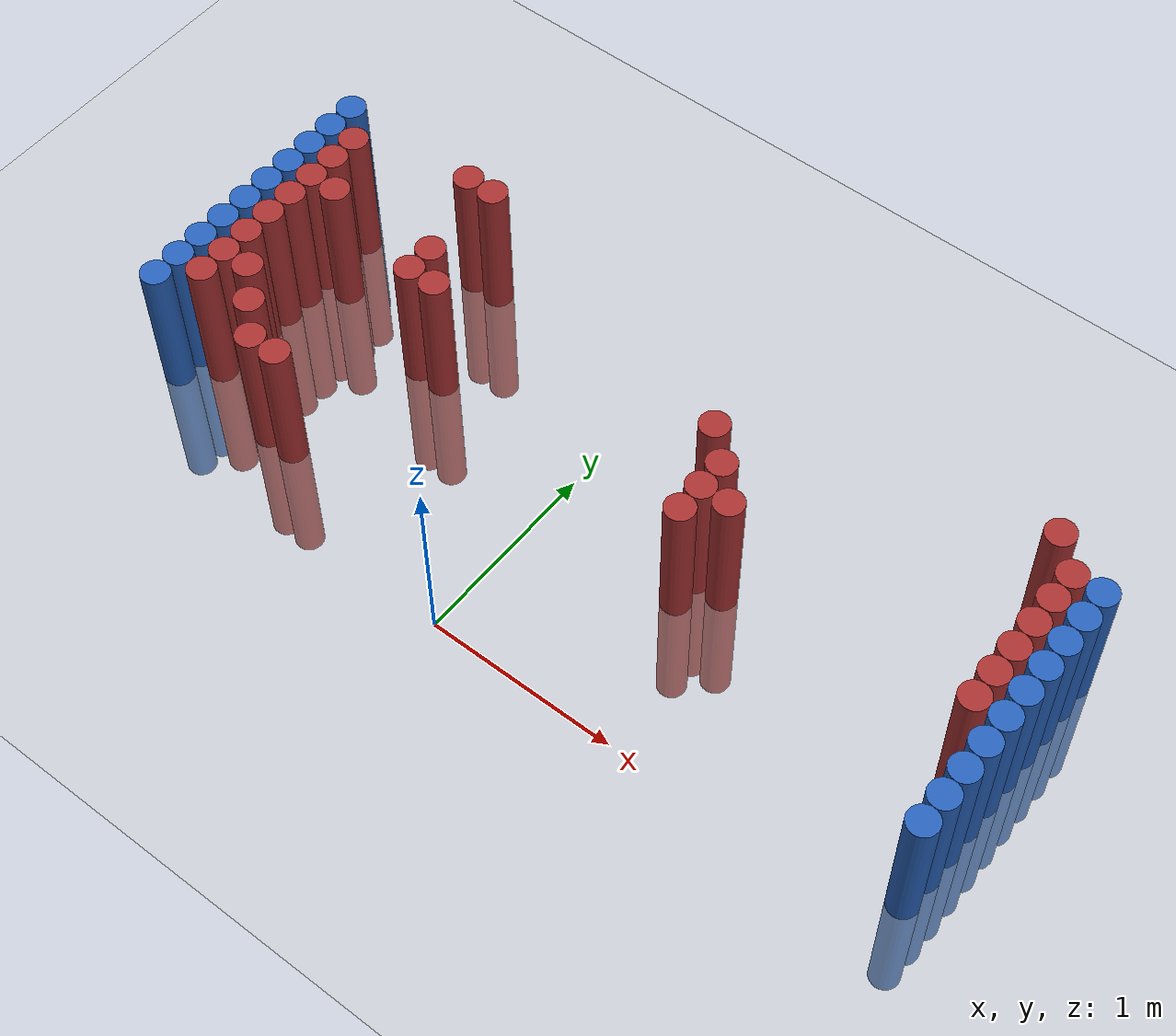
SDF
<sdf version="1.6">
 <world name="default">
  <model name="ground_plane">
   <static>1</static>
   <link name="link">
    <collision name="collision">
     <geometry><plane><normal>0 0 1</normal><size>100 100</size></plane></geometry>
     <surface><friction><ode><mu>100</mu><mu2>50</mu2></ode></friction></surface>
    </collision>
    <visual name="visual">
     <cast_shadows>0</cast_shadows>
     <geometry><plane><normal>0 0 1</normal><size>100 100</size></plane></geometry>
     <material>
      <script><uri>file://media/materials/scripts/gazebo.material</uri><name>Gazebo/Grey</name></script>
     </material>
    </visual>
   </link>
  </model>
  <model name="unit_cylinder_97">
   <static>1</static>
   <pose>-1.925000 0.325000 0.000000 0.000000 0.000000 0.000000</pose>
   <link name="link">
    <inertial>
     <mass>1</mass>
     <inertia><ixx>0.145833</ixx><ixy>0</ixy><ixz>0</ixz><iyy>0.145833</iyy><iyz>0</iyz><izz>0.125</izz></inertia>
    </inertial>
    <collision name="collision">
     <geometry><cylinder><radius>0.075000</radius><length>1.5</length></cylinder></geometry>
    </collision>
    <visual name="visual">
     <geometry><cylinder><radius>0.075000</radius><length>1.5</length></cylinder></geometry>
     <material>
      <ambient>0.152000 0.379000 0.720000 1</ambient>
      <diffuse>0.152000 0.379000 0.720000 1</diffuse>
     </material>
     <material>
      <script><name>Gazebo/Grey</name><uri>file://media/materials/scripts/gazebo.material</uri></script>
     </material>
    </visual>
   </link>
  </model>
  <model name="unit_cylinder_98">
   <static>1</static>
   <pose>-1.925000 0.475000 0.000000 0.000000 0.000000 0.000000</pose>
   <link name="link">
    <inertial>
     <mass>1</mass>
     <inertia><ixx>0.145833</ixx><ixy>0</ixy><ixz>0</ixz><iyy>0.145833</iyy><iyz>0</iyz><izz>0.125</izz></inertia>
    </inertial>
    <collision name="collision">
     <geometry><cylinder><radius>0.075000</radius><length>1.5</length></cylinder></geometry>
    </collision>
    <visual name="visual">
     <geometry><cylinder><radius>0.075000</radius><length>1.5</length></cylinder></geometry>
     <material>
      <ambient>0.152000 0.379000 0.720000 1</ambient>
      <diffuse>0.152000 0.379000 0.720000 1</diffuse>
     </material>
     <material>
      <script><name>Gazebo/Grey</name><uri>file://media/materials/scripts/gazebo.material</uri></script>
     </material>
    </visual>
   </link>
  </model>
  <model name="unit_cylinder_99">
   <static>1</static>
   <pose>-1.925000 0.625000 0.000000 0.000000 0.000000 0.000000</pose>
   <link name="link">
    <inertial>
     <mass>1</mass>
     <inertia><ixx>0.145833</ixx><ixy>0</ixy><ixz>0</ixz><iyy>0.145833</iyy><iyz>0</iyz><izz>0.125</izz></inertia>
    </inertial>
    <collision name="collision">
     <geometry><cylinder><radius>0.075000</radius><length>1.5</length></cylinder></geometry>
    </collision>
    <visual name="visual">
     <geometry><cylinder><radius>0.075000</radius><length>1.5</length></cylinder></geometry>
     <material>
      <ambient>0.152000 0.379000 0.720000 1</ambient>
      <diffuse>0.152000 0.379000 0.720000 1</diffuse>
     </material>
     <material>
      <script><name>Gazebo/Grey</name><uri>file://media/materials/scripts/gazebo.material</uri></script>
     </material>
    </visual>
   </link>
  </model>
  <model name="unit_cylinder_100">
   <static>1</static>
   <pose>-1.925000 0.775000 0.000000 0.000000 0.000000 0.000000</pose>
   <link name="link">
    <inertial>
     <mass>1</mass>
     <inertia><ixx>0.145833</ixx><ixy>0</ixy><ixz>0</ixz><iyy>0.145833</iyy><iyz>0</iyz><izz>0.125</izz></inertia>
    </inertial>
    <collision name="collision">
     <geometry><cylinder><radius>0.075000</radius><length>1.5</length></cylinder></geometry>
    </collision>
    <visual name="visual">
     <geometry><cylinder><radius>0.075000</radius><length>1.5</length></cylinder></geometry>
     <material>
      <ambient>0.152000 0.379000 0.720000 1</ambient>
      <diffuse>0.152000 0.379000 0.720000 1</diffuse>
     </material>
     <material>
      <script><name>Gazebo/Grey</name><uri>file://media/materials/scripts/gazebo.material</uri></script>
     </material>
    </visual>
   </link>
  </model>
  <model name="unit_cylinder_101">
   <static>1</static>
   <pose>-1.925000 0.925000 0.000000 0.000000 0.000000 0.000000</pose>
   <link name="link">
    <inertial>
     <mass>1</mass>
     <inertia><ixx>0.145833</ixx><ixy>0</ixy><ixz>0</ixz><iyy>0.145833</iyy><iyz>0</iyz><izz>0.125</izz></inertia>
    </inertial>
    <collision name="collision">
     <geometry><cylinder><radius>0.075000</radius><length>1.5</length></cylinder></geometry>
    </collision>
    <visual name="visual">
     <geometry><cylinder><radius>0.075000</radius><length>1.5</length></cylinder></geometry>
     <material>
      <ambient>0.152000 0.379000 0.720000 1</ambient>
      <diffuse>0.152000 0.379000 0.720000 1</diffuse>
     </material>
     <material>
      <script><name>Gazebo/Grey</name><uri>file://media/materials/scripts/gazebo.material</uri></script>
     </material>
    </visual>
   </link>
  </model>
  <model name="unit_cylinder_102">
   <static>1</static>
   <pose>-1.925000 1.075000 0.000000 0.000000 0.000000 0.000000</pose>
   <link name="link">
    <inertial>
     <mass>1</mass>
     <inertia><ixx>0.145833</ixx><ixy>0</ixy><ixz>0</ixz><iyy>0.145833</iyy><iyz>0</iyz><izz>0.125</izz></inertia>
    </inertial>
    <collision name="collision">
     <geometry><cylinder><radius>0.075000</radius><length>1.5</length></cylinder></geometry>
    </collision>
    <visual name="visual">
     <geometry><cylinder><radius>0.075000</radius><length>1.5</length></cylinder></geometry>
     <material>
      <ambient>0.152000 0.379000 0.720000 1</ambient>
      <diffuse>0.152000 0.379000 0.720000 1</diffuse>
     </material>
     <material>
      <script><name>Gazebo/Grey</name><uri>file://media/materials/scripts/gazebo.material</uri></script>
     </material>
    </visual>
   </link>
  </model>
  <model name="unit_cylinder_103">
   <static>1</static>
   <pose>-1.925000 1.225000 0.000000 0.000000 0.000000 0.000000</pose>
   <link name="link">
    <inertial>
     <mass>1</mass>
     <inertia><ixx>0.145833</ixx><ixy>0</ixy><ixz>0</ixz><iyy>0.145833</iyy><iyz>0</iyz><izz>0.125</izz></inertia>
    </inertial>
    <collision name="collision">
     <geometry><cylinder><radius>0.075000</radius><length>1.5</length></cylinder></geometry>
    </collision>
    <visual name="visual">
     <geometry><cylinder><radius>0.075000</radius><length>1.5</length></cylinder></geometry>
     <material>
      <ambient>0.152000 0.379000 0.720000 1</ambient>
      <diffuse>0.152000 0.379000 0.720000 1</diffuse>
     </material>
     <material>
      <script><name>Gazebo/Grey</name><uri>file://media/materials/scripts/gazebo.material</uri></script>
     </material>
    </visual>
   </link>
  </model>
  <model name="unit_cylinder_104">
   <static>1</static>
   <pose>-1.925000 1.375000 0.000000 0.000000 0.000000 0.000000</pose>
   <link name="link">
    <inertial>
     <mass>1</mass>
     <inertia><ixx>0.145833</ixx><ixy>0</ixy><ixz>0</ixz><iyy>0.145833</iyy><iyz>0</iyz><izz>0.125</izz></inertia>
    </inertial>
    <collision name="collision">
     <geometry><cylinder><radius>0.075000</radius><length>1.5</length></cylinder></geometry>
    </collision>
    <visual name="visual">
     <geometry><cylinder><radius>0.075000</radius><length>1.5</length></cylinder></geometry>
     <material>
      <ambient>0.152000 0.379000 0.720000 1</ambient>
      <diffuse>0.152000 0.379000 0.720000 1</diffuse>
     </material>
     <material>
      <script><name>Gazebo/Grey</name><uri>file://media/materials/scripts/gazebo.material</uri></script>
     </material>
    </visual>
   </link>
  </model>
  <model name="unit_cylinder_105">
   <static>1</static>
   <pose>-1.925000 1.525000 0.000000 0.000000 0.000000 0.000000</pose>
   <link name="link">
    <inertial>
     <mass>1</mass>
     <inertia><ixx>0.145833</ixx><ixy>0</ixy><ixz>0</ixz><iyy>0.145833</iyy><iyz>0</iyz><izz>0.125</izz></inertia>
    </inertial>
    <collision name="collision">
     <geometry><cylinder><radius>0.075000</radius><length>1.5</length></cylinder></geometry>
    </collision>
    <visual name="visual">
     <geometry><cylinder><radius>0.075000</radius><length>1.5</length></cylinder></geometry>
     <material>
      <ambient>0.152000 0.379000 0.720000 1</ambient>
      <diffuse>0.152000 0.379000 0.720000 1</diffuse>
     </material>
     <material>
      <script><name>Gazebo/Grey</name><uri>file://media/materials/scripts/gazebo.material</uri></script>
     </material>
    </visual>
   </link>
  </model>
  <model name="unit_cylinder_106">
   <static>1</static>
   <pose>-1.925000 1.675000 0.000000 0.000000 0.000000 0.000000</pose>
   <link name="link">
    <inertial>
     <mass>1</mass>
     <inertia><ixx>0.145833</ixx><ixy>0</ixy><ixz>0</ixz><iyy>0.145833</iyy><iyz>0</iyz><izz>0.125</izz></inertia>
    </inertial>
    <collision name="collision">
     <geometry><cylinder><radius>0.075000</radius><length>1.5</length></cylinder></geometry>
    </collision>
    <visual name="visual">
     <geometry><cylinder><radius>0.075000</radius><length>1.5</length></cylinder></geometry>
     <material>
      <ambient>0.152000 0.379000 0.720000 1</ambient>
      <diffuse>0.152000 0.379000 0.720000 1</diffuse>
     </material>
     <material>
      <script><name>Gazebo/Grey</name><uri>file://media/materials/scripts/gazebo.material</uri></script>
     </material>
    </visual>
   </link>
  </model>
  <model name="unit_cylinder_126">
   <static>1</static>
   <pose>-1.775000 0.475000 0.000000 0.000000 0.000000 0.000000</pose>
   <link name="link">
    <inertial>
     <mass>1</mass>
     <inertia><ixx>0.145833</ixx><ixy>0</ixy><ixz>0</ixz><iyy>0.145833</iyy><iyz>0</iyz><izz>0.125</izz></inertia>
    </inertial>
    <collision name="collision">
     <geometry><cylinder><radius>0.075000</radius><length>1.5</length></cylinder></geometry>
    </collision>
    <visual name="visual">
     <geometry><cylinder><radius>0.075000</radius><length>1.5</length></cylinder></geometry>
     <material>
      <ambient>0.648000 0.192000 0.192000 1</ambient>
      <diffuse>0.648000 0.192000 0.192000 1</diffuse>
     </material>
     <material>
      <script><name>Gazebo/Grey</name><uri>file://media/materials/scripts/gazebo.material</uri></script>
     </material>
    </visual>
   </link>
  </model>
  <model name="unit_cylinder_127">
   <static>1</static>
   <pose>-1.775000 0.625000 0.000000 0.000000 0.000000 0.000000</pose>
   <link name="link">
    <inertial>
     <mass>1</mass>
     <inertia><ixx>0.145833</ixx><ixy>0</ixy><ixz>0</ixz><iyy>0.145833</iyy><iyz>0</iyz><izz>0.125</izz></inertia>
    </inertial>
    <collision name="collision">
     <geometry><cylinder><radius>0.075000</radius><length>1.5</length></cylinder></geometry>
    </collision>
    <visual name="visual">
     <geometry><cylinder><radius>0.075000</radius><length>1.5</length></cylinder></geometry>
     <material>
      <ambient>0.648000 0.192000 0.192000 1</ambient>
      <diffuse>0.648000 0.192000 0.192000 1</diffuse>
     </material>
     <material>
      <script><name>Gazebo/Grey</name><uri>file://media/materials/scripts/gazebo.material</uri></script>
     </material>
    </visual>
   </link>
  </model>
  <model name="unit_cylinder_128">
   <static>1</static>
   <pose>-1.775000 0.775000 0.000000 0.000000 0.000000 0.000000</pose>
   <link name="link">
    <inertial>
     <mass>1</mass>
     <inertia><ixx>0.145833</ixx><ixy>0</ixy><ixz>0</ixz><iyy>0.145833</iyy><iyz>0</iyz><izz>0.125</izz></inertia>
    </inertial>
    <collision name="collision">
     <geometry><cylinder><radius>0.075000</radius><length>1.5</length></cylinder></geometry>
    </collision>
    <visual name="visual">
     <geometry><cylinder><radius>0.075000</radius><length>1.5</length></cylinder></geometry>
     <material>
      <ambient>0.648000 0.192000 0.192000 1</ambient>
      <diffuse>0.648000 0.192000 0.192000 1</diffuse>
     </material>
     <material>
      <script><name>Gazebo/Grey</name><uri>file://media/materials/scripts/gazebo.material</uri></script>
     </material>
    </visual>
   </link>
  </model>
  <model name="unit_cylinder_129">
   <static>1</static>
   <pose>-1.775000 0.925000 0.000000 0.000000 0.000000 0.000000</pose>
   <link name="link">
    <inertial>
     <mass>1</mass>
     <inertia><ixx>0.145833</ixx><ixy>0</ixy><ixz>0</ixz><iyy>0.145833</iyy><iyz>0</iyz><izz>0.125</izz></inertia>
    </inertial>
    <collision name="collision">
     <geometry><cylinder><radius>0.075000</radius><length>1.5</length></cylinder></geometry>
    </collision>
    <visual name="visual">
     <geometry><cylinder><radius>0.075000</radius><length>1.5</length></cylinder></geometry>
     <material>
      <ambient>0.648000 0.192000 0.192000 1</ambient>
      <diffuse>0.648000 0.192000 0.192000 1</diffuse>
     </material>
     <material>
      <script><name>Gazebo/Grey</name><uri>file://media/materials/scripts/gazebo.material</uri></script>
     </material>
    </visual>
   </link>
  </model>
  <model name="unit_cylinder_130">
   <static>1</static>
   <pose>-1.775000 1.075000 0.000000 0.000000 0.000000 0.000000</pose>
   <link name="link">
    <inertial>
     <mass>1</mass>
     <inertia><ixx>0.145833</ixx><ixy>0</ixy><ixz>0</ixz><iyy>0.145833</iyy><iyz>0</iyz><izz>0.125</izz></inertia>
    </inertial>
    <collision name="collision">
     <geometry><cylinder><radius>0.075000</radius><length>1.5</length></cylinder></geometry>
    </collision>
    <visual name="visual">
     <geometry><cylinder><radius>0.075000</radius><length>1.5</length></cylinder></geometry>
     <material>
      <ambient>0.648000 0.192000 0.192000 1</ambient>
      <diffuse>0.648000 0.192000 0.192000 1</diffuse>
     </material>
     <material>
      <script><name>Gazebo/Grey</name><uri>file://media/materials/scripts/gazebo.material</uri></script>
     </material>
    </visual>
   </link>
  </model>
  <model name="unit_cylinder_131">
   <static>1</static>
   <pose>-1.775000 1.225000 0.000000 0.000000 0.000000 0.000000</pose>
   <link name="link">
    <inertial>
     <mass>1</mass>
     <inertia><ixx>0.145833</ixx><ixy>0</ixy><ixz>0</ixz><iyy>0.145833</iyy><iyz>0</iyz><izz>0.125</izz></inertia>
    </inertial>
    <collision name="collision">
     <geometry><cylinder><radius>0.075000</radius><length>1.5</length></cylinder></geometry>
    </collision>
    <visual name="visual">
     <geometry><cylinder><radius>0.075000</radius><length>1.5</length></cylinder></geometry>
     <material>
      <ambient>0.648000 0.192000 0.192000 1</ambient>
      <diffuse>0.648000 0.192000 0.192000 1</diffuse>
     </material>
     <material>
      <script><name>Gazebo/Grey</name><uri>file://media/materials/scripts/gazebo.material</uri></script>
     </material>
    </visual>
   </link>
  </model>
  <model name="unit_cylinder_132">
   <static>1</static>
   <pose>-1.775000 1.375000 0.000000 0.000000 0.000000 0.000000</pose>
   <link name="link">
    <inertial>
     <mass>1</mass>
     <inertia><ixx>0.145833</ixx><ixy>0</ixy><ixz>0</ixz><iyy>0.145833</iyy><iyz>0</iyz><izz>0.125</izz></inertia>
    </inertial>
    <collision name="collision">
     <geometry><cylinder><radius>0.075000</radius><length>1.5</length></cylinder></geometry>
    </collision>
    <visual name="visual">
     <geometry><cylinder><radius>0.075000</radius><length>1.5</length></cylinder></geometry>
     <material>
      <ambient>0.648000 0.192000 0.192000 1</ambient>
      <diffuse>0.648000 0.192000 0.192000 1</diffuse>
     </material>
     <material>
      <script><name>Gazebo/Grey</name><uri>file://media/materials/scripts/gazebo.material</uri></script>
     </material>
    </visual>
   </link>
  </model>
  <model name="unit_cylinder_133">
   <static>1</static>
   <pose>-1.775000 1.525000 0.000000 0.000000 0.000000 0.000000</pose>
   <link name="link">
    <inertial>
     <mass>1</mass>
     <inertia><ixx>0.145833</ixx><ixy>0</ixy><ixz>0</ixz><iyy>0.145833</iyy><iyz>0</iyz><izz>0.125</izz></inertia>
    </inertial>
    <collision name="collision">
     <geometry><cylinder><radius>0.075000</radius><length>1.5</length></cylinder></geometry>
    </collision>
    <visual name="visual">
     <geometry><cylinder><radius>0.075000</radius><length>1.5</length></cylinder></geometry>
     <material>
      <ambient>0.648000 0.192000 0.192000 1</ambient>
      <diffuse>0.648000 0.192000 0.192000 1</diffuse>
     </material>
     <material>
      <script><name>Gazebo/Grey</name><uri>file://media/materials/scripts/gazebo.material</uri></script>
     </material>
    </visual>
   </link>
  </model>
  <model name="unit_cylinder_141">
   <static>1</static>
   <pose>-1.625000 0.625000 0.000000 0.000000 0.000000 0.000000</pose>
   <link name="link">
    <inertial>
     <mass>1</mass>
     <inertia><ixx>0.145833</ixx><ixy>0</ixy><ixz>0</ixz><iyy>0.145833</iyy><iyz>0</iyz><izz>0.125</izz></inertia>
    </inertial>
    <collision name="collision">
     <geometry><cylinder><radius>0.075000</radius><length>1.5</length></cylinder></geometry>
    </collision>
    <visual name="visual">
     <geometry><cylinder><radius>0.075000</radius><length>1.5</length></cylinder></geometry>
     <material>
      <ambient>0.648000 0.192000 0.192000 1</ambient>
      <diffuse>0.648000 0.192000 0.192000 1</diffuse>
     </material>
     <material>
      <script><name>Gazebo/Grey</name><uri>file://media/materials/scripts/gazebo.material</uri></script>
     </material>
    </visual>
   </link>
  </model>
  <model name="unit_cylinder_142">
   <static>1</static>
   <pose>-1.625000 1.225000 0.000000 0.000000 0.000000 0.000000</pose>
   <link name="link">
    <inertial>
     <mass>1</mass>
     <inertia><ixx>0.145833</ixx><ixy>0</ixy><ixz>0</ixz><iyy>0.145833</iyy><iyz>0</iyz><izz>0.125</izz></inertia>
    </inertial>
    <collision name="collision">
     <geometry><cylinder><radius>0.075000</radius><length>1.5</length></cylinder></geometry>
    </collision>
    <visual name="visual">
     <geometry><cylinder><radius>0.075000</radius><length>1.5</length></cylinder></geometry>
     <material>
      <ambient>0.648000 0.192000 0.192000 1</ambient>
      <diffuse>0.648000 0.192000 0.192000 1</diffuse>
     </material>
     <material>
      <script><name>Gazebo/Grey</name><uri>file://media/materials/scripts/gazebo.material</uri></script>
     </material>
    </visual>
   </link>
  </model>
  <model name="unit_cylinder_146">
   <static>1</static>
   <pose>-1.475000 0.475000 0.000000 0.000000 0.000000 0.000000</pose>
   <link name="link">
    <inertial>
     <mass>1</mass>
     <inertia><ixx>0.145833</ixx><ixy>0</ixy><ixz>0</ixz><iyy>0.145833</iyy><iyz>0</iyz><izz>0.125</izz></inertia>
    </inertial>
    <collision name="collision">
     <geometry><cylinder><radius>0.075000</radius><length>1.5</length></cylinder></geometry>
    </collision>
    <visual name="visual">
     <geometry><cylinder><radius>0.075000</radius><length>1.5</length></cylinder></geometry>
     <material>
      <ambient>0.648000 0.192000 0.192000 1</ambient>
      <diffuse>0.648000 0.192000 0.192000 1</diffuse>
     </material>
     <material>
      <script><name>Gazebo/Grey</name><uri>file://media/materials/scripts/gazebo.material</uri></script>
     </material>
    </visual>
   </link>
  </model>
  <model name="unit_cylinder_149">
   <static>1</static>
   <pose>-1.325000 0.325000 0.000000 0.000000 0.000000 0.000000</pose>
   <link name="link">
    <inertial>
     <mass>1</mass>
     <inertia><ixx>0.145833</ixx><ixy>0</ixy><ixz>0</ixz><iyy>0.145833</iyy><iyz>0</iyz><izz>0.125</izz></inertia>
    </inertial>
    <collision name="collision">
     <geometry><cylinder><radius>0.075000</radius><length>1.5</length></cylinder></geometry>
    </collision>
    <visual name="visual">
     <geometry><cylinder><radius>0.075000</radius><length>1.5</length></cylinder></geometry>
     <material>
      <ambient>0.648000 0.192000 0.192000 1</ambient>
      <diffuse>0.648000 0.192000 0.192000 1</diffuse>
     </material>
     <material>
      <script><name>Gazebo/Grey</name><uri>file://media/materials/scripts/gazebo.material</uri></script>
     </material>
    </visual>
   </link>
  </model>
  <model name="unit_cylinder_151">
   <static>1</static>
   <pose>-1.175000 0.325000 0.000000 0.000000 0.000000 0.000000</pose>
   <link name="link">
    <inertial>
     <mass>1</mass>
     <inertia><ixx>0.145833</ixx><ixy>0</ixy><ixz>0</ixz><iyy>0.145833</iyy><iyz>0</iyz><izz>0.125</izz></inertia>
    </inertial>
    <collision name="collision">
     <geometry><cylinder><radius>0.075000</radius><length>1.5</length></cylinder></geometry>
    </collision>
    <visual name="visual">
     <geometry><cylinder><radius>0.075000</radius><length>1.5</length></cylinder></geometry>
     <material>
      <ambient>0.648000 0.192000 0.192000 1</ambient>
      <diffuse>0.648000 0.192000 0.192000 1</diffuse>
     </material>
     <material>
      <script><name>Gazebo/Grey</name><uri>file://media/materials/scripts/gazebo.material</uri></script>
     </material>
    </visual>
   </link>
  </model>
  <model name="unit_cylinder_152">
   <static>1</static>
   <pose>-1.175000 1.675000 0.000000 0.000000 0.000000 0.000000</pose>
   <link name="link">
    <inertial>
     <mass>1</mass>
     <inertia><ixx>0.145833</ixx><ixy>0</ixy><ixz>0</ixz><iyy>0.145833</iyy><iyz>0</iyz><izz>0.125</izz></inertia>
    </inertial>
    <collision name="collision">
     <geometry><cylinder><radius>0.075000</radius><length>1.5</length></cylinder></geometry>
    </collision>
    <visual name="visual">
     <geometry><cylinder><radius>0.075000</radius><length>1.5</length></cylinder></geometry>
     <material>
      <ambient>0.648000 0.192000 0.192000 1</ambient>
      <diffuse>0.648000 0.192000 0.192000 1</diffuse>
     </material>
     <material>
      <script><name>Gazebo/Grey</name><uri>file://media/materials/scripts/gazebo.material</uri></script>
     </material>
    </visual>
   </link>
  </model>
  <model name="unit_cylinder_154">
   <static>1</static>
   <pose>-1.025000 1.075000 0.000000 0.000000 0.000000 0.000000</pose>
   <link name="link">
    <inertial>
     <mass>1</mass>
     <inertia><ixx>0.145833</ixx><ixy>0</ixy><ixz>0</ixz><iyy>0.145833</iyy><iyz>0</iyz><izz>0.125</izz></inertia>
    </inertial>
    <collision name="collision">
     <geometry><cylinder><radius>0.075000</radius><length>1.5</length></cylinder></geometry>
    </collision>
    <visual name="visual">
     <geometry><cylinder><radius>0.075000</radius><length>1.5</length></cylinder></geometry>
     <material>
      <ambient>0.648000 0.192000 0.192000 1</ambient>
      <diffuse>0.648000 0.192000 0.192000 1</diffuse>
     </material>
     <material>
      <script><name>Gazebo/Grey</name><uri>file://media/materials/scripts/gazebo.material</uri></script>
     </material>
    </visual>
   </link>
  </model>
  <model name="unit_cylinder_155">
   <static>1</static>
   <pose>-1.025000 1.225000 0.000000 0.000000 0.000000 0.000000</pose>
   <link name="link">
    <inertial>
     <mass>1</mass>
     <inertia><ixx>0.145833</ixx><ixy>0</ixy><ixz>0</ixz><iyy>0.145833</iyy><iyz>0</iyz><izz>0.125</izz></inertia>
    </inertial>
    <collision name="collision">
     <geometry><cylinder><radius>0.075000</radius><length>1.5</length></cylinder></geometry>
    </collision>
    <visual name="visual">
     <geometry><cylinder><radius>0.075000</radius><length>1.5</length></cylinder></geometry>
     <material>
      <ambient>0.648000 0.192000 0.192000 1</ambient>
      <diffuse>0.648000 0.192000 0.192000 1</diffuse>
     </material>
     <material>
      <script><name>Gazebo/Grey</name><uri>file://media/materials/scripts/gazebo.material</uri></script>
     </material>
    </visual>
   </link>
  </model>
  <model name="unit_cylinder_156">
   <static>1</static>
   <pose>-1.025000 1.675000 0.000000 0.000000 0.000000 0.000000</pose>
   <link name="link">
    <inertial>
     <mass>1</mass>
     <inertia><ixx>0.145833</ixx><ixy>0</ixy><ixz>0</ixz><iyy>0.145833</iyy><iyz>0</iyz><izz>0.125</izz></inertia>
    </inertial>
    <collision name="collision">
     <geometry><cylinder><radius>0.075000</radius><length>1.5</length></cylinder></geometry>
    </collision>
    <visual name="visual">
     <geometry><cylinder><radius>0.075000</radius><length>1.5</length></cylinder></geometry>
     <material>
      <ambient>0.648000 0.192000 0.192000 1</ambient>
      <diffuse>0.648000 0.192000 0.192000 1</diffuse>
     </material>
     <material>
      <script><name>Gazebo/Grey</name><uri>file://media/materials/scripts/gazebo.material</uri></script>
     </material>
    </visual>
   </link>
  </model>
  <model name="unit_cylinder_157">
   <static>1</static>
   <pose>-0.875000 1.075000 0.000000 0.000000 0.000000 0.000000</pose>
   <link name="link">
    <inertial>
     <mass>1</mass>
     <inertia><ixx>0.145833</ixx><ixy>0</ixy><ixz>0</ixz><iyy>0.145833</iyy><iyz>0</iyz><izz>0.125</izz></inertia>
    </inertial>
    <collision name="collision">
     <geometry><cylinder><radius>0.075000</radius><length>1.5</length></cylinder></geometry>
    </collision>
    <visual name="visual">
     <geometry><cylinder><radius>0.075000</radius><length>1.5</length></cylinder></geometry>
     <material>
      <ambient>0.648000 0.192000 0.192000 1</ambient>
      <diffuse>0.648000 0.192000 0.192000 1</diffuse>
     </material>
     <material>
      <script><name>Gazebo/Grey</name><uri>file://media/materials/scripts/gazebo.material</uri></script>
     </material>
    </visual>
   </link>
  </model>
  <model name="unit_cylinder_158">
   <static>1</static>
   <pose>0.625000 1.225000 0.000000 0.000000 0.000000 0.000000</pose>
   <link name="link">
    <inertial>
     <mass>1</mass>
     <inertia><ixx>0.145833</ixx><ixy>0</ixy><ixz>0</ixz><iyy>0.145833</iyy><iyz>0</iyz><izz>0.125</izz></inertia>
    </inertial>
    <collision name="collision">
     <geometry><cylinder><radius>0.075000</radius><length>1.5</length></cylinder></geometry>
    </collision>
    <visual name="visual">
     <geometry><cylinder><radius>0.075000</radius><length>1.5</length></cylinder></geometry>
     <material>
      <ambient>0.648000 0.192000 0.192000 1</ambient>
      <diffuse>0.648000 0.192000 0.192000 1</diffuse>
     </material>
     <material>
      <script><name>Gazebo/Grey</name><uri>file://media/materials/scripts/gazebo.material</uri></script>
     </material>
    </visual>
   </link>
  </model>
  <model name="unit_cylinder_159">
   <static>1</static>
   <pose>0.775000 0.775000 0.000000 0.000000 0.000000 0.000000</pose>
   <link name="link">
    <inertial>
     <mass>1</mass>
     <inertia><ixx>0.145833</ixx><ixy>0</ixy><ixz>0</ixz><iyy>0.145833</iyy><iyz>0</iyz><izz>0.125</izz></inertia>
    </inertial>
    <collision name="collision">
     <geometry><cylinder><radius>0.075000</radius><length>1.5</length></cylinder></geometry>
    </collision>
    <visual name="visual">
     <geometry><cylinder><radius>0.075000</radius><length>1.5</length></cylinder></geometry>
     <material>
      <ambient>0.648000 0.192000 0.192000 1</ambient>
      <diffuse>0.648000 0.192000 0.192000 1</diffuse>
     </material>
     <material>
      <script><name>Gazebo/Grey</name><uri>file://media/materials/scripts/gazebo.material</uri></script>
     </material>
    </visual>
   </link>
  </model>
  <model name="unit_cylinder_160">
   <static>1</static>
   <pose>0.775000 0.925000 0.000000 0.000000 0.000000 0.000000</pose>
   <link name="link">
    <inertial>
     <mass>1</mass>
     <inertia><ixx>0.145833</ixx><ixy>0</ixy><ixz>0</ixz><iyy>0.145833</iyy><iyz>0</iyz><izz>0.125</izz></inertia>
    </inertial>
    <collision name="collision">
     <geometry><cylinder><radius>0.075000</radius><length>1.5</length></cylinder></geometry>
    </collision>
    <visual name="visual">
     <geometry><cylinder><radius>0.075000</radius><length>1.5</length></cylinder></geometry>
     <material>
      <ambient>0.648000 0.192000 0.192000 1</ambient>
      <diffuse>0.648000 0.192000 0.192000 1</diffuse>
     </material>
     <material>
      <script><name>Gazebo/Grey</name><uri>file://media/materials/scripts/gazebo.material</uri></script>
     </material>
    </visual>
   </link>
  </model>
  <model name="unit_cylinder_161">
   <static>1</static>
   <pose>0.775000 1.075000 0.000000 0.000000 0.000000 0.000000</pose>
   <link name="link">
    <inertial>
     <mass>1</mass>
     <inertia><ixx>0.145833</ixx><ixy>0</ixy><ixz>0</ixz><iyy>0.145833</iyy><iyz>0</iyz><izz>0.125</izz></inertia>
    </inertial>
    <collision name="collision">
     <geometry><cylinder><radius>0.075000</radius><length>1.5</length></cylinder></geometry>
    </collision>
    <visual name="visual">
     <geometry><cylinder><radius>0.075000</radius><length>1.5</length></cylinder></geometry>
     <material>
      <ambient>0.648000 0.192000 0.192000 1</ambient>
      <diffuse>0.648000 0.192000 0.192000 1</diffuse>
     </material>
     <material>
      <script><name>Gazebo/Grey</name><uri>file://media/materials/scripts/gazebo.material</uri></script>
     </material>
    </visual>
   </link>
  </model>
  <model name="unit_cylinder_164">
   <static>1</static>
   <pose>0.925000 0.925000 0.000000 0.000000 0.000000 0.000000</pose>
   <link name="link">
    <inertial>
     <mass>1</mass>
     <inertia><ixx>0.145833</ixx><ixy>0</ixy><ixz>0</ixz><iyy>0.145833</iyy><iyz>0</iyz><izz>0.125</izz></inertia>
    </inertial>
    <collision name="collision">
     <geometry><cylinder><radius>0.075000</radius><length>1.5</length></cylinder></geometry>
    </collision>
    <visual name="visual">
     <geometry><cylinder><radius>0.075000</radius><length>1.5</length></cylinder></geometry>
     <material>
      <ambient>0.648000 0.192000 0.192000 1</ambient>
      <diffuse>0.648000 0.192000 0.192000 1</diffuse>
     </material>
     <material>
      <script><name>Gazebo/Grey</name><uri>file://media/materials/scripts/gazebo.material</uri></script>
     </material>
    </visual>
   </link>
  </model>
  <model name="unit_cylinder_197">
   <static>1</static>
   <pose>2.125000 1.675000 0.000000 0.000000 0.000000 0.000000</pose>
   <link name="link">
    <inertial>
     <mass>1</mass>
     <inertia><ixx>0.145833</ixx><ixy>0</ixy><ixz>0</ixz><iyy>0.145833</iyy><iyz>0</iyz><izz>0.125</izz></inertia>
    </inertial>
    <collision name="collision">
     <geometry><cylinder><radius>0.075000</radius><length>1.5</length></cylinder></geometry>
    </collision>
    <visual name="visual">
     <geometry><cylinder><radius>0.075000</radius><length>1.5</length></cylinder></geometry>
     <material>
      <ambient>0.648000 0.192000 0.192000 1</ambient>
      <diffuse>0.648000 0.192000 0.192000 1</diffuse>
     </material>
     <material>
      <script><name>Gazebo/Grey</name><uri>file://media/materials/scripts/gazebo.material</uri></script>
     </material>
    </visual>
   </link>
  </model>
  <model name="unit_cylinder_204">
   <static>1</static>
   <pose>2.275000 0.775000 0.000000 0.000000 0.000000 0.000000</pose>
   <link name="link">
    <inertial>
     <mass>1</mass>
     <inertia><ixx>0.145833</ixx><ixy>0</ixy><ixz>0</ixz><iyy>0.145833</iyy><iyz>0</iyz><izz>0.125</izz></inertia>
    </inertial>
    <collision name="collision">
     <geometry><cylinder><radius>0.075000</radius><length>1.5</length></cylinder></geometry>
    </collision>
    <visual name="visual">
     <geometry><cylinder><radius>0.075000</radius><length>1.5</length></cylinder></geometry>
     <material>
      <ambient>0.648000 0.192000 0.192000 1</ambient>
      <diffuse>0.648000 0.192000 0.192000 1</diffuse>
     </material>
     <material>
      <script><name>Gazebo/Grey</name><uri>file://media/materials/scripts/gazebo.material</uri></script>
     </material>
    </visual>
   </link>
  </model>
  <model name="unit_cylinder_205">
   <static>1</static>
   <pose>2.275000 0.925000 0.000000 0.000000 0.000000 0.000000</pose>
   <link name="link">
    <inertial>
     <mass>1</mass>
     <inertia><ixx>0.145833</ixx><ixy>0</ixy><ixz>0</ixz><iyy>0.145833</iyy><iyz>0</iyz><izz>0.125</izz></inertia>
    </inertial>
    <collision name="collision">
     <geometry><cylinder><radius>0.075000</radius><length>1.5</length></cylinder></geometry>
    </collision>
    <visual name="visual">
     <geometry><cylinder><radius>0.075000</radius><length>1.5</length></cylinder></geometry>
     <material>
      <ambient>0.648000 0.192000 0.192000 1</ambient>
      <diffuse>0.648000 0.192000 0.192000 1</diffuse>
     </material>
     <material>
      <script><name>Gazebo/Grey</name><uri>file://media/materials/scripts/gazebo.material</uri></script>
     </material>
    </visual>
   </link>
  </model>
  <model name="unit_cylinder_206">
   <static>1</static>
   <pose>2.275000 1.075000 0.000000 0.000000 0.000000 0.000000</pose>
   <link name="link">
    <inertial>
     <mass>1</mass>
     <inertia><ixx>0.145833</ixx><ixy>0</ixy><ixz>0</ixz><iyy>0.145833</iyy><iyz>0</iyz><izz>0.125</izz></inertia>
    </inertial>
    <collision name="collision">
     <geometry><cylinder><radius>0.075000</radius><length>1.5</length></cylinder></geometry>
    </collision>
    <visual name="visual">
     <geometry><cylinder><radius>0.075000</radius><length>1.5</length></cylinder></geometry>
     <material>
      <ambient>0.648000 0.192000 0.192000 1</ambient>
      <diffuse>0.648000 0.192000 0.192000 1</diffuse>
     </material>
     <material>
      <script><name>Gazebo/Grey</name><uri>file://media/materials/scripts/gazebo.material</uri></script>
     </material>
    </visual>
   </link>
  </model>
  <model name="unit_cylinder_207">
   <static>1</static>
   <pose>2.275000 1.225000 0.000000 0.000000 0.000000 0.000000</pose>
   <link name="link">
    <inertial>
     <mass>1</mass>
     <inertia><ixx>0.145833</ixx><ixy>0</ixy><ixz>0</ixz><iyy>0.145833</iyy><iyz>0</iyz><izz>0.125</izz></inertia>
    </inertial>
    <collision name="collision">
     <geometry><cylinder><radius>0.075000</radius><length>1.5</length></cylinder></geometry>
    </collision>
    <visual name="visual">
     <geometry><cylinder><radius>0.075000</radius><length>1.5</length></cylinder></geometry>
     <material>
      <ambient>0.648000 0.192000 0.192000 1</ambient>
      <diffuse>0.648000 0.192000 0.192000 1</diffuse>
     </material>
     <material>
      <script><name>Gazebo/Grey</name><uri>file://media/materials/scripts/gazebo.material</uri></script>
     </material>
    </visual>
   </link>
  </model>
  <model name="unit_cylinder_208">
   <static>1</static>
   <pose>2.275000 1.375000 0.000000 0.000000 0.000000 0.000000</pose>
   <link name="link">
    <inertial>
     <mass>1</mass>
     <inertia><ixx>0.145833</ixx><ixy>0</ixy><ixz>0</ixz><iyy>0.145833</iyy><iyz>0</iyz><izz>0.125</izz></inertia>
    </inertial>
    <collision name="collision">
     <geometry><cylinder><radius>0.075000</radius><length>1.5</length></cylinder></geometry>
    </collision>
    <visual name="visual">
     <geometry><cylinder><radius>0.075000</radius><length>1.5</length></cylinder></geometry>
     <material>
      <ambient>0.648000 0.192000 0.192000 1</ambient>
      <diffuse>0.648000 0.192000 0.192000 1</diffuse>
     </material>
     <material>
      <script><name>Gazebo/Grey</name><uri>file://media/materials/scripts/gazebo.material</uri></script>
     </material>
    </visual>
   </link>
  </model>
  <model name="unit_cylinder_209">
   <static>1</static>
   <pose>2.275000 1.525000 0.000000 0.000000 0.000000 0.000000</pose>
   <link name="link">
    <inertial>
     <mass>1</mass>
     <inertia><ixx>0.145833</ixx><ixy>0</ixy><ixz>0</ixz><iyy>0.145833</iyy><iyz>0</iyz><izz>0.125</izz></inertia>
    </inertial>
    <collision name="collision">
     <geometry><cylinder><radius>0.075000</radius><length>1.5</length></cylinder></geometry>
    </collision>
    <visual name="visual">
     <geometry><cylinder><radius>0.075000</radius><length>1.5</length></cylinder></geometry>
     <material>
      <ambient>0.648000 0.192000 0.192000 1</ambient>
      <diffuse>0.648000 0.192000 0.192000 1</diffuse>
     </material>
     <material>
      <script><name>Gazebo/Grey</name><uri>file://media/materials/scripts/gazebo.material</uri></script>
     </material>
    </visual>
   </link>
  </model>
  <model name="unit_cylinder_218">
   <static>1</static>
   <pose>2.425000 0.175000 0.000000 0.000000 0.000000 0.000000</pose>
   <link name="link">
    <inertial>
     <mass>1</mass>
     <inertia><ixx>0.145833</ixx><ixy>0</ixy><ixz>0</ixz><iyy>0.145833</iyy><iyz>0</iyz><izz>0.125</izz></inertia>
    </inertial>
    <collision name="collision">
     <geometry><cylinder><radius>0.075000</radius><length>1.5</length></cylinder></geometry>
    </collision>
    <visual name="visual">
     <geometry><cylinder><radius>0.075000</radius><length>1.5</length></cylinder></geometry>
     <material>
      <ambient>0.152000 0.379000 0.720000 1</ambient>
      <diffuse>0.152000 0.379000 0.720000 1</diffuse>
     </material>
     <material>
      <script><name>Gazebo/Grey</name><uri>file://media/materials/scripts/gazebo.material</uri></script>
     </material>
    </visual>
   </link>
  </model>
  <model name="unit_cylinder_219">
   <static>1</static>
   <pose>2.425000 0.325000 0.000000 0.000000 0.000000 0.000000</pose>
   <link name="link">
    <inertial>
     <mass>1</mass>
     <inertia><ixx>0.145833</ixx><ixy>0</ixy><ixz>0</ixz><iyy>0.145833</iyy><iyz>0</iyz><izz>0.125</izz></inertia>
    </inertial>
    <collision name="collision">
     <geometry><cylinder><radius>0.075000</radius><length>1.5</length></cylinder></geometry>
    </collision>
    <visual name="visual">
     <geometry><cylinder><radius>0.075000</radius><length>1.5</length></cylinder></geometry>
     <material>
      <ambient>0.152000 0.379000 0.720000 1</ambient>
      <diffuse>0.152000 0.379000 0.720000 1</diffuse>
     </material>
     <material>
      <script><name>Gazebo/Grey</name><uri>file://media/materials/scripts/gazebo.material</uri></script>
     </material>
    </visual>
   </link>
  </model>
  <model name="unit_cylinder_220">
   <static>1</static>
   <pose>2.425000 0.475000 0.000000 0.000000 0.000000 0.000000</pose>
   <link name="link">
    <inertial>
     <mass>1</mass>
     <inertia><ixx>0.145833</ixx><ixy>0</ixy><ixz>0</ixz><iyy>0.145833</iyy><iyz>0</iyz><izz>0.125</izz></inertia>
    </inertial>
    <collision name="collision">
     <geometry><cylinder><radius>0.075000</radius><length>1.5</length></cylinder></geometry>
    </collision>
    <visual name="visual">
     <geometry><cylinder><radius>0.075000</radius><length>1.5</length></cylinder></geometry>
     <material>
      <ambient>0.152000 0.379000 0.720000 1</ambient>
      <diffuse>0.152000 0.379000 0.720000 1</diffuse>
     </material>
     <material>
      <script><name>Gazebo/Grey</name><uri>file://media/materials/scripts/gazebo.material</uri></script>
     </material>
    </visual>
   </link>
  </model>
  <model name="unit_cylinder_221">
   <static>1</static>
   <pose>2.425000 0.625000 0.000000 0.000000 0.000000 0.000000</pose>
   <link name="link">
    <inertial>
     <mass>1</mass>
     <inertia><ixx>0.145833</ixx><ixy>0</ixy><ixz>0</ixz><iyy>0.145833</iyy><iyz>0</iyz><izz>0.125</izz></inertia>
    </inertial>
    <collision name="collision">
     <geometry><cylinder><radius>0.075000</radius><length>1.5</length></cylinder></geometry>
    </collision>
    <visual name="visual">
     <geometry><cylinder><radius>0.075000</radius><length>1.5</length></cylinder></geometry>
     <material>
      <ambient>0.152000 0.379000 0.720000 1</ambient>
      <diffuse>0.152000 0.379000 0.720000 1</diffuse>
     </material>
     <material>
      <script><name>Gazebo/Grey</name><uri>file://media/materials/scripts/gazebo.material</uri></script>
     </material>
    </visual>
   </link>
  </model>
  <model name="unit_cylinder_222">
   <static>1</static>
   <pose>2.425000 0.775000 0.000000 0.000000 0.000000 0.000000</pose>
   <link name="link">
    <inertial>
     <mass>1</mass>
     <inertia><ixx>0.145833</ixx><ixy>0</ixy><ixz>0</ixz><iyy>0.145833</iyy><iyz>0</iyz><izz>0.125</izz></inertia>
    </inertial>
    <collision name="collision">
     <geometry><cylinder><radius>0.075000</radius><length>1.5</length></cylinder></geometry>
    </collision>
    <visual name="visual">
     <geometry><cylinder><radius>0.075000</radius><length>1.5</length></cylinder></geometry>
     <material>
      <ambient>0.152000 0.379000 0.720000 1</ambient>
      <diffuse>0.152000 0.379000 0.720000 1</diffuse>
     </material>
     <material>
      <script><name>Gazebo/Grey</name><uri>file://media/materials/scripts/gazebo.material</uri></script>
     </material>
    </visual>
   </link>
  </model>
  <model name="unit_cylinder_223">
   <static>1</static>
   <pose>2.425000 0.925000 0.000000 0.000000 0.000000 0.000000</pose>
   <link name="link">
    <inertial>
     <mass>1</mass>
     <inertia><ixx>0.145833</ixx><ixy>0</ixy><ixz>0</ixz><iyy>0.145833</iyy><iyz>0</iyz><izz>0.125</izz></inertia>
    </inertial>
    <collision name="collision">
     <geometry><cylinder><radius>0.075000</radius><length>1.5</length></cylinder></geometry>
    </collision>
    <visual name="visual">
     <geometry><cylinder><radius>0.075000</radius><length>1.5</length></cylinder></geometry>
     <material>
      <ambient>0.152000 0.379000 0.720000 1</ambient>
      <diffuse>0.152000 0.379000 0.720000 1</diffuse>
     </material>
     <material>
      <script><name>Gazebo/Grey</name><uri>file://media/materials/scripts/gazebo.material</uri></script>
     </material>
    </visual>
   </link>
  </model>
  <model name="unit_cylinder_224">
   <static>1</static>
   <pose>2.425000 1.075000 0.000000 0.000000 0.000000 0.000000</pose>
   <link name="link">
    <inertial>
     <mass>1</mass>
     <inertia><ixx>0.145833</ixx><ixy>0</ixy><ixz>0</ixz><iyy>0.145833</iyy><iyz>0</iyz><izz>0.125</izz></inertia>
    </inertial>
    <collision name="collision">
     <geometry><cylinder><radius>0.075000</radius><length>1.5</length></cylinder></geometry>
    </collision>
    <visual name="visual">
     <geometry><cylinder><radius>0.075000</radius><length>1.5</length></cylinder></geometry>
     <material>
      <ambient>0.152000 0.379000 0.720000 1</ambient>
      <diffuse>0.152000 0.379000 0.720000 1</diffuse>
     </material>
     <material>
      <script><name>Gazebo/Grey</name><uri>file://media/materials/scripts/gazebo.material</uri></script>
     </material>
    </visual>
   </link>
  </model>
  <model name="unit_cylinder_225">
   <static>1</static>
   <pose>2.425000 1.225000 0.000000 0.000000 0.000000 0.000000</pose>
   <link name="link">
    <inertial>
     <mass>1</mass>
     <inertia><ixx>0.145833</ixx><ixy>0</ixy><ixz>0</ixz><iyy>0.145833</iyy><iyz>0</iyz><izz>0.125</izz></inertia>
    </inertial>
    <collision name="collision">
     <geometry><cylinder><radius>0.075000</radius><length>1.5</length></cylinder></geometry>
    </collision>
    <visual name="visual">
     <geometry><cylinder><radius>0.075000</radius><length>1.5</length></cylinder></geometry>
     <material>
      <ambient>0.152000 0.379000 0.720000 1</ambient>
      <diffuse>0.152000 0.379000 0.720000 1</diffuse>
     </material>
     <material>
      <script><name>Gazebo/Grey</name><uri>file://media/materials/scripts/gazebo.material</uri></script>
     </material>
    </visual>
   </link>
  </model>
  <model name="unit_cylinder_226">
   <static>1</static>
   <pose>2.425000 1.375000 0.000000 0.000000 0.000000 0.000000</pose>
   <link name="link">
    <inertial>
     <mass>1</mass>
     <inertia><ixx>0.145833</ixx><ixy>0</ixy><ixz>0</ixz><iyy>0.145833</iyy><iyz>0</iyz><izz>0.125</izz></inertia>
    </inertial>
    <collision name="collision">
     <geometry><cylinder><radius>0.075000</radius><length>1.5</length></cylinder></geometry>
    </collision>
    <visual name="visual">
     <geometry><cylinder><radius>0.075000</radius><length>1.5</length></cylinder></geometry>
     <material>
      <ambient>0.152000 0.379000 0.720000 1</ambient>
      <diffuse>0.152000 0.379000 0.720000 1</diffuse>
     </material>
     <material>
      <script><name>Gazebo/Grey</name><uri>file://media/materials/scripts/gazebo.material</uri></script>
     </material>
    </visual>
   </link>
  </model>
  <model name="unit_cylinder_227">
   <static>1</static>
   <pose>2.425000 1.525000 0.000000 0.000000 0.000000 0.000000</pose>
   <link name="link">
    <inertial>
     <mass>1</mass>
     <inertia><ixx>0.145833</ixx><ixy>0</ixy><ixz>0</ixz><iyy>0.145833</iyy><iyz>0</iyz><izz>0.125</izz></inertia>
    </inertial>
    <collision name="collision">
     <geometry><cylinder><radius>0.075000</radius><length>1.5</length></cylinder></geometry>
    </collision>
    <visual name="visual">
     <geometry><cylinder><radius>0.075000</radius><length>1.5</length></cylinder></geometry>
     <material>
      <ambient>0.152000 0.379000 0.720000 1</ambient>
      <diffuse>0.152000 0.379000 0.720000 1</diffuse>
     </material>
     <material>
      <script><name>Gazebo/Grey</name><uri>file://media/materials/scripts/gazebo.material</uri></script>
     </material>
    </visual>
   </link>
  </model>
 </world>
</sdf>
